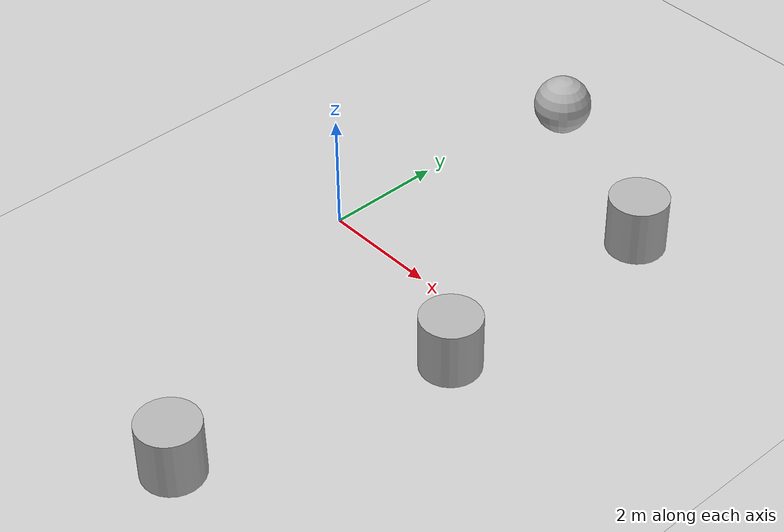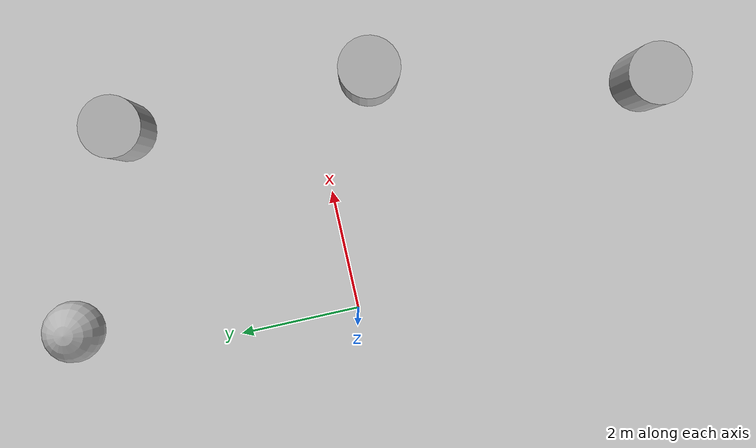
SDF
<sdf version='1.9'>
  <world name='lampo_world'>
    <physics name='1ms' type='ignored'>
      <max_step_size>0.001</max_step_size>
      <real_time_factor>1</real_time_factor>
      <real_time_update_rate>1000</real_time_update_rate>
    </physics>
    <plugin name='ignition::gazebo::systems::Physics' filename='libignition-gazebo-physics-system.so'/>
    <plugin name='ignition::gazebo::systems::UserCommands' filename='libignition-gazebo-user-commands-system.so'/>
    <plugin name='ignition::gazebo::systems::SceneBroadcaster' filename='libignition-gazebo-scene-broadcaster-system.so'/>
    <gui fullscreen='false'>
      <plugin name='3D View' filename='GzScene3D'>
        <ignition-gui>
          <title>3D View</title>
          <property type='bool' key='showTitleBar'>false</property>
          <property type='string' key='state'>docked</property>
        </ignition-gui>
        <engine>ogre</engine>
        <scene>scene</scene>
        <ambient_light>0.4 0.4 0.4</ambient_light>
        <background_color>0.8 0.8 0.8</background_color>
      </plugin>
      <plugin name='World control' filename='WorldControl'>
        <ignition-gui>
          <title>World control</title>
          <property type='bool' key='showTitleBar'>false</property>
          <property type='bool' key='resizable'>false</property>
          <property type='double' key='height'>72</property>
          <property type='double' key='width'>121</property>
          <property type='double' key='z'>1</property>
          <property type='string' key='state'>floating</property>
          <anchors target='3D View'>
            <line own='left' target='left'/>
            <line own='bottom' target='bottom'/>
          </anchors>
        </ignition-gui>
        <play_pause>true</play_pause>
        <step>true</step>
        <start_paused>true</start_paused>
        <service>/world/world_demo/control</service>
        <stats_topic>/world/world_demo/stats</stats_topic>
      </plugin>
      <plugin name='World stats' filename='WorldStats'>
        <ignition-gui>
          <title>World stats</title>
          <property type='bool' key='showTitleBar'>false</property>
          <property type='bool' key='resizable'>false</property>
          <property type='double' key='height'>110</property>
          <property type='double' key='width'>290</property>
          <property type='double' key='z'>1</property>
          <property type='string' key='state'>floating</property>
          <anchors target='3D View'>
            <line own='right' target='right'/>
            <line own='bottom' target='bottom'/>
          </anchors>
        </ignition-gui>
        <sim_time>true</sim_time>
        <real_time>true</real_time>
        <real_time_factor>true</real_time_factor>
        <iterations>true</iterations>
        <topic>/world/world_demo/stats</topic>
      </plugin>
      <plugin name='Entity tree' filename='EntityTree'/>
    </gui>
    <gravity>0 0 -9.8</gravity>
    <magnetic_field>6e-06 2.3e-05 -4.2e-05</magnetic_field>
    <atmosphere type='adiabatic'/>
    <scene>
      <ambient>0.4 0.4 0.4 1</ambient>
      <background>0.7 0.7 0.7 1</background>
      <shadows>true</shadows>
    </scene>
    <model name='ground_plane'>
      <static>true</static>
      <link name='link'>
        <collision name='collision'>
          <geometry>
            <plane>
              <normal>0 0 1</normal>
              <size>1 1</size>
            </plane>
          </geometry>
          <surface>
            <friction>
              <ode/>
            </friction>
            <bounce/>
            <contact/>
          </surface>
        </collision>
        <visual name='visual'>
          <geometry>
            <plane>
              <normal>0 0 1</normal>
              <size>100 100</size>
            </plane>
          </geometry>
          <material>
            <ambient>0.8 0.8 0.8 1</ambient>
            <diffuse>0.8 0.8 0.8 1</diffuse>
            <specular>0.8 0.8 0.8 1</specular>
          </material>
        </visual>
        <pose>0 0 0 0 -0 0</pose>
        <inertial>
          <pose>0 0 0 0 -0 0</pose>
          <mass>1</mass>
          <inertia>
            <ixx>1</ixx>
            <ixy>0</ixy>
            <ixz>0</ixz>
            <iyy>1</iyy>
            <iyz>0</iyz>
            <izz>1</izz>
          </inertia>
        </inertial>
        <enable_wind>false</enable_wind>
      </link>
      <pose>0 0 0 0 -0 0</pose>
      <self_collide>false</self_collide>
    </model>
    <model name='cylinder'>
      <pose>3.72645 3.14946 0.5 0 -0 0</pose>
      <link name='cylinder_link'>
        <inertial>
          <inertia>
            <ixx>0.14580000000000001</ixx>
            <ixy>0</ixy>
            <ixz>0</ixz>
            <iyy>0.14580000000000001</iyy>
            <iyz>0</iyz>
            <izz>0.125</izz>
          </inertia>
          <mass>1</mass>
          <pose>0 0 0 0 -0 0</pose>
        </inertial>
        <collision name='cylinder_collision'>
          <geometry>
            <cylinder>
              <radius>0.5</radius>
              <length>1</length>
            </cylinder>
          </geometry>
          <surface>
            <friction>
              <ode/>
            </friction>
            <bounce/>
            <contact/>
          </surface>
        </collision>
        <visual name='cylinder_visual'>
          <geometry>
            <cylinder>
              <radius>0.5</radius>
              <length>1</length>
            </cylinder>
          </geometry>
          <material>
            <ambient>0.3 0.3 0.3 1</ambient>
            <diffuse>0.7 0.7 0.7 1</diffuse>
            <specular>1 1 1 1</specular>
          </material>
        </visual>
        <pose>0 0 0 0 -0 0</pose>
        <enable_wind>false</enable_wind>
      </link>
      <static>false</static>
      <self_collide>false</self_collide>
    </model>
    <model name='cylinder_0'>
      <pose>3.75044 -1.01232 0.5 0 -0 0</pose>
      <link name='cylinder_link'>
        <inertial>
          <inertia>
            <ixx>0.14580000000000001</ixx>
            <ixy>0</ixy>
            <ixz>0</ixz>
            <iyy>0.14580000000000001</iyy>
            <iyz>0</iyz>
            <izz>0.125</izz>
          </inertia>
          <mass>1</mass>
          <pose>0 0 0 0 -0 0</pose>
        </inertial>
        <collision name='cylinder_collision'>
          <geometry>
            <cylinder>
              <radius>0.5</radius>
              <length>1</length>
            </cylinder>
          </geometry>
          <surface>
            <friction>
              <ode/>
            </friction>
            <bounce/>
            <contact/>
          </surface>
        </collision>
        <visual name='cylinder_visual'>
          <geometry>
            <cylinder>
              <radius>0.5</radius>
              <length>1</length>
            </cylinder>
          </geometry>
          <material>
            <ambient>0.3 0.3 0.3 1</ambient>
            <diffuse>0.7 0.7 0.7 1</diffuse>
            <specular>1 1 1 1</specular>
          </material>
        </visual>
        <pose>0 0 0 0 -0 0</pose>
        <enable_wind>false</enable_wind>
      </link>
      <static>false</static>
      <self_collide>false</self_collide>
    </model>
    <model name='cylinder_1'>
      <pose>2.67539 -5.42558 0.5 0 -0 0</pose>
      <link name='cylinder_link'>
        <inertial>
          <inertia>
            <ixx>0.14580000000000001</ixx>
            <ixy>0</ixy>
            <ixz>0</ixz>
            <iyy>0.14580000000000001</iyy>
            <iyz>0</iyz>
            <izz>0.125</izz>
          </inertia>
          <mass>1</mass>
          <pose>0 0 0 0 -0 0</pose>
        </inertial>
        <collision name='cylinder_collision'>
          <geometry>
            <cylinder>
              <radius>0.5</radius>
              <length>1</length>
            </cylinder>
          </geometry>
          <surface>
            <friction>
              <ode/>
            </friction>
            <bounce/>
            <contact/>
          </surface>
        </collision>
        <visual name='cylinder_visual'>
          <geometry>
            <cylinder>
              <radius>0.5</radius>
              <length>1</length>
            </cylinder>
          </geometry>
          <material>
            <ambient>0.3 0.3 0.3 1</ambient>
            <diffuse>0.7 0.7 0.7 1</diffuse>
            <specular>1 1 1 1</specular>
          </material>
        </visual>
        <pose>0 0 0 0 -0 0</pose>
        <enable_wind>false</enable_wind>
      </link>
      <static>false</static>
      <self_collide>false</self_collide>
    </model>
    <model name='sphere'>
      <pose>0.68144 4.56532 0.5 0 -0 0</pose>
      <link name='sphere_link'>
        <inertial>
          <inertia>
            <ixx>0.10000000000000001</ixx>
            <ixy>0</ixy>
            <ixz>0</ixz>
            <iyy>0.10000000000000001</iyy>
            <iyz>0</iyz>
            <izz>0.10000000000000001</izz>
          </inertia>
          <mass>1</mass>
          <pose>0 0 0 0 -0 0</pose>
        </inertial>
        <collision name='sphere_collision'>
          <geometry>
            <sphere>
              <radius>0.5</radius>
            </sphere>
          </geometry>
          <surface>
            <friction>
              <ode/>
            </friction>
            <bounce/>
            <contact/>
          </surface>
        </collision>
        <visual name='sphere_visual'>
          <geometry>
            <sphere>
              <radius>0.5</radius>
            </sphere>
          </geometry>
          <material>
            <ambient>0.3 0.3 0.3 1</ambient>
            <diffuse>0.7 0.7 0.7 1</diffuse>
            <specular>1 1 1 1</specular>
          </material>
        </visual>
        <pose>0 0 0 0 -0 0</pose>
        <enable_wind>false</enable_wind>
      </link>
      <static>false</static>
      <self_collide>false</self_collide>
    </model>
    <light name='sun' type='directional'>
      <pose>0 0 10 0 -0 0</pose>
      <cast_shadows>true</cast_shadows>
      <intensity>1</intensity>
      <direction>-0.5 0.1 -0.9</direction>
      <diffuse>0.8 0.8 0.8 1</diffuse>
      <specular>0.2 0.2 0.2 1</specular>
      <attenuation>
        <range>1000</range>
        <linear>0.01</linear>
        <constant>0.90000000000000002</constant>
        <quadratic>0.001</quadratic>
      </attenuation>
      <spot>
        <inner_angle>0</inner_angle>
        <outer_angle>0</outer_angle>
        <falloff>0</falloff>
      </spot>
    </light>
  </world>
</sdf>
